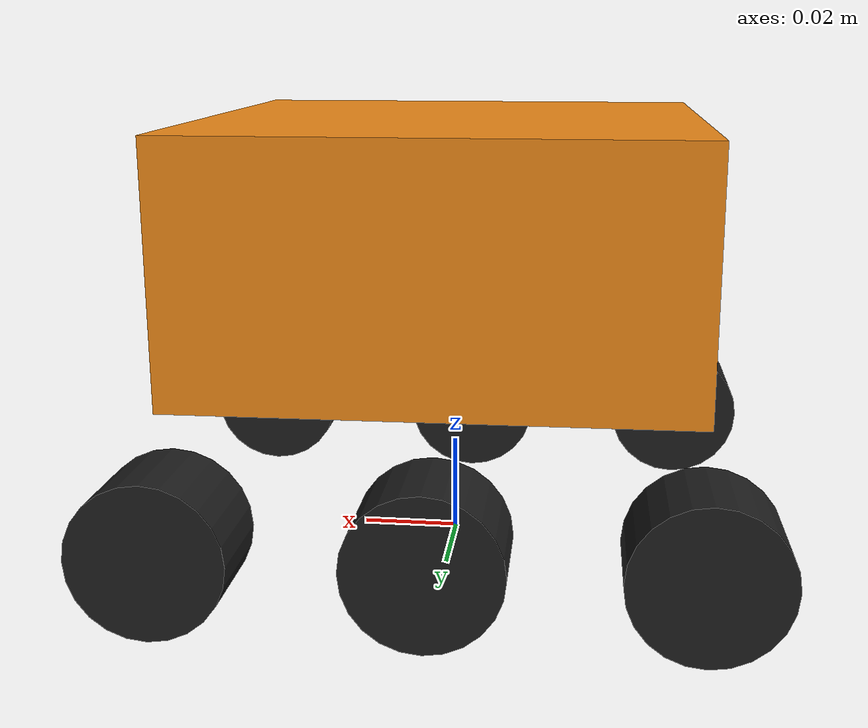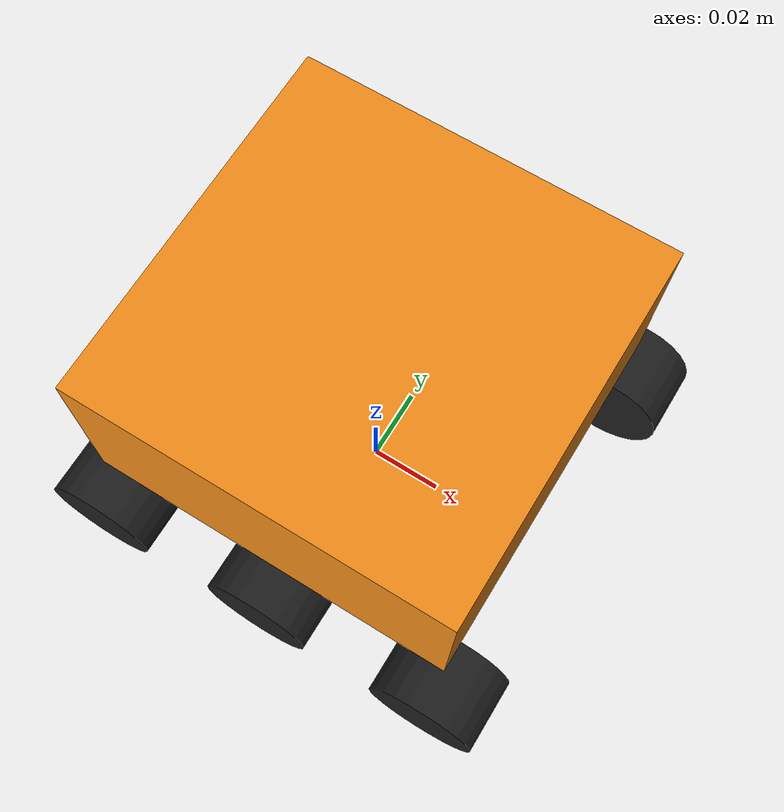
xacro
<?xml version="1.0"?>
<!-- Basic differential drive mobile base -->
<robot xmlns:xacro="http://www.ros.org/wiki/xacro" name="diffdrive_robot">
  <xacro:arg name="prefix" default="" />
  <xacro:arg name="use_mock_hardware" default="true" />

  <xacro:include filename="$(find curie_robot_description)/mock_diffbot/urdf/mock_diffbot_description.urdf.xacro" />

  <!-- Import Rviz colors -->
  <xacro:include filename="$(find curie_robot_description)/mock_diffbot/urdf/mock_diffbot.materials.xacro" />

  <!-- Import diffbot ros2_control description -->
  <xacro:include filename="$(find curie_drive_controller)/config/mock_diffbot.ros2_control.xacro" />

  <xacro:diffbot prefix="$(arg prefix)" />

  <xacro:mock_diffbot_ros2_control
    name="MockDiffBot" prefix="$(arg prefix)" use_vcan="$(arg use_mock_hardware)" />

</robot>

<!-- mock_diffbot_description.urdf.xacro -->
<robot xmlns:xacro="http://www.ros.org/wiki/xacro">

  <xacro:macro name="diffbot" params="prefix">

  <!-- Constants for robot dimensions -->
  <xacro:property name="PI" value="3.1415926535897931"/>
  <xacro:property name="base_mass" value="0.3" /> <!-- arbitrary value for base mass -->
  <xacro:property name="base_width" value="0.1" />
  <xacro:property name="base_length" value="0.1" />
  <xacro:property name="base_height" value="0.05" />
  <xacro:property name="wheel_mass" value="0.3" /> <!-- arbitrary value for wheel mass -->
  <xacro:property name="wheel_len" value="0.020" />
  <xacro:property name="wheel_radius" value="0.015" />
  <xacro:property name="caster_wheel_mass" value="0.1" /> <!-- arbitrary value for caster wheel mass -->
  <xacro:property name="caster_wheel_radius" value="0.015" />
  <xacro:property name="z_offset" value="${base_height/2}" /> <!-- Space btw top of beam and the each joint -->

  <!-- Base Link -->
  <link name="${prefix}base_link">
    <collision>
      <origin xyz="0 0 0" rpy="0 0 0"/>
      <geometry>
        <box size="${base_width} ${base_length} ${base_height}"/>
      </geometry>
    </collision>

    <visual>
      <origin xyz="0 0 ${base_height/2 + wheel_radius + z_offset}" rpy="0 0 0"/>
      <geometry>
        <box size="${base_width} ${base_length} ${base_height}"/>
      </geometry>
      <material name="orange"/>
    </visual>

    <inertial>
      <origin xyz="0 0 0" rpy="0 0 0"/>
      <mass value="${base_mass}"/>
      <inertia
        ixx="${base_mass / 12.0 * (base_length*base_length + base_height*base_height)}" ixy="0.0" ixz="0.0"
        iyy="${base_mass / 12.0 * (base_height*base_height + base_width*base_width)}" iyz="0.0"
        izz="${base_mass / 12.0 * (base_width*base_width + base_length*base_length)}"/>
      </inertial>
    </link>

    <joint name="${prefix}front_left_wheel_joint" type="continuous">
      <parent link="${prefix}base_link"/>
      <child link="${prefix}front_left_wheel"/>
      <origin xyz="${base_length/2} -${base_width/2} ${wheel_radius}" rpy="0 0 0"/>
      <axis xyz="0 1 0"/>
      <dynamics damping="0.2"/>
      <limit effort="100" velocity="1.0"/>
    </joint>

    <!-- front left wheel Link -->
    <link name="${prefix}front_left_wheel">
      <collision>
        <origin xyz="0 0 0" rpy="${PI/2} 0 0"/>
        <geometry>
          <cylinder length="${wheel_len}" radius="${wheel_radius}"/>
        </geometry>
      </collision>

      <visual>
        <origin xyz="0 0 0" rpy="${PI/2} 0 0"/>
        <geometry>
          <cylinder length="${wheel_len}" radius="${wheel_radius}"/>
        </geometry>
        <material name="black"/>
      </visual>

      <inertial>
        <origin xyz="0 0 0" rpy="${PI/2} 0 0"/>
        <mass value="${wheel_mass}"/>
        <inertia
          ixx="${wheel_mass / 12.0 * (3*wheel_radius*wheel_radius + wheel_len*wheel_len)}" ixy="0.0" ixz="0.0"
          iyy="${wheel_mass / 12.0 * (3*wheel_radius*wheel_radius + wheel_len*wheel_len)}" iyz="0.0"
          izz="${wheel_mass / 2.0 * wheel_radius*wheel_radius}"/>
        </inertial>
      </link>

    <joint name="${prefix}front_right_wheel_joint" type="continuous">
      <parent link="${prefix}base_link"/>
      <child link="${prefix}front_right_wheel"/>
      <origin xyz="${base_length/2} ${base_width/2} ${wheel_radius}" rpy="0 0 0"/>
      <axis xyz="0 1 0"/>
      <dynamics damping="0.2"/>
      <limit effort="100" velocity="1.0"/>
    </joint>

    <!-- front right wheel Link -->
    <link name="${prefix}front_right_wheel">
      <collision>
        <origin xyz="0 0 0" rpy="${PI/2} 0 0"/>
        <geometry>
          <cylinder length="${wheel_len}" radius="${wheel_radius}"/>
        </geometry>
      </collision>

      <visual>
        <origin xyz="0 0 0" rpy="${PI/2} 0 0"/>
        <geometry>
          <cylinder length="${wheel_len}" radius="${wheel_radius}"/>
        </geometry>
        <material name="black"/>
      </visual>

      <inertial>
        <origin xyz="0 0 0" rpy="${PI/2} 0 0"/>
        <mass value="${wheel_mass}"/>
        <inertia
          ixx="${wheel_mass / 12.0 * (3*wheel_radius*wheel_radius + wheel_len*wheel_len)}" ixy="0.0" ixz="0.0"
          iyy="${wheel_mass / 12.0 * (3*wheel_radius*wheel_radius + wheel_len*wheel_len)}" iyz="0.0"
          izz="${wheel_mass / 2.0 * wheel_radius*wheel_radius}"/>
        </inertial>
      </link>

    <joint name="${prefix}mid_left_wheel_joint" type="continuous">
      <parent link="${prefix}base_link"/>
      <child link="${prefix}mid_left_wheel"/>
      <origin xyz="0 -${base_width/2} ${wheel_radius}" rpy="0 0 0"/>
      <axis xyz="0 1 0"/>
      <dynamics damping="0.2"/>
      <limit effort="100" velocity="1.0"/>
    </joint>

    <!-- mid left wheel Link -->
    <link name="${prefix}mid_left_wheel">
      <collision>
        <origin xyz="0 0 0" rpy="${PI/2} 0 0"/>
        <geometry>
          <cylinder length="${wheel_len}" radius="${wheel_radius}"/>
        </geometry>
      </collision>

      <visual>
        <origin xyz="0 0 0" rpy="${PI/2} 0 0"/>
        <geometry>
          <cylinder length="${wheel_len}" radius="${wheel_radius}"/>
        </geometry>
        <material name="black"/>
      </visual>

      <inertial>
        <origin xyz="0 0 0" rpy="${PI/2} 0 0"/>
        <mass value="${wheel_mass}"/>
        <inertia
          ixx="${wheel_mass / 12.0 * (3*wheel_radius*wheel_radius + wheel_len*wheel_len)}" ixy="0.0" ixz="0.0"
          iyy="${wheel_mass / 12.0 * (3*wheel_radius*wheel_radius + wheel_len*wheel_len)}" iyz="0.0"
          izz="${wheel_mass / 2.0 * wheel_radius*wheel_radius}"/>
        </inertial>
      </link>

    <joint name="${prefix}mid_right_wheel_joint" type="continuous">
      <parent link="${prefix}base_link"/>
      <child link="${prefix}mid_right_wheel"/>
      <origin xyz="0 ${base_width/2} ${wheel_radius}" rpy="0 0 0"/>
      <axis xyz="0 1 0"/>
      <dynamics damping="0.2"/>
      <limit effort="100" velocity="1.0"/>
    </joint>

        <!-- mid right wheel Link -->
    <link name="${prefix}mid_right_wheel">
      <collision>
        <origin xyz="0 0 0" rpy="${PI/2} 0 0"/>
        <geometry>
          <cylinder length="${wheel_len}" radius="${wheel_radius}"/>
        </geometry>
      </collision>

      <visual>
        <origin xyz="0 0 0" rpy="${PI/2} 0 0"/>
        <geometry>
          <cylinder length="${wheel_len}" radius="${wheel_radius}"/>
        </geometry>
        <material name="black"/>
      </visual>

      <inertial>
        <origin xyz="0 0 0" rpy="${PI/2} 0 0"/>
        <mass value="${wheel_mass}"/>
        <inertia
          ixx="${wheel_mass / 12.0 * (3*wheel_radius*wheel_radius + wheel_len*wheel_len)}" ixy="0.0" ixz="0.0"
          iyy="${wheel_mass / 12.0 * (3*wheel_radius*wheel_radius + wheel_len*wheel_len)}" iyz="0.0"
          izz="${wheel_mass / 2.0 * wheel_radius*wheel_radius}"/>
        </inertial>
      </link>

    <joint name="${prefix}back_left_wheel_joint" type="continuous">
      <parent link="${prefix}base_link"/>
      <child link="${prefix}back_left_wheel"/>
      <origin xyz="${-base_length/2} -${base_width/2} ${wheel_radius}" rpy="0 0 0"/>
      <axis xyz="0 1 0"/>
      <dynamics damping="0.2"/>
      <limit effort="100" velocity="1.0"/>
    </joint>

    <!-- back left wheel Link -->
    <link name="${prefix}back_left_wheel">
      <collision>
        <origin xyz="0 0 0" rpy="${PI/2} 0 0"/>
        <geometry>
          <cylinder length="${wheel_len}" radius="${wheel_radius}"/>
        </geometry>
      </collision>

      <visual>
        <origin xyz="0 0 0" rpy="${PI/2} 0 0"/>
        <geometry>
          <cylinder length="${wheel_len}" radius="${wheel_radius}"/>
        </geometry>
        <material name="black"/>
      </visual>

      <inertial>
        <origin xyz="0 0 0" rpy="${PI/2} 0 0"/>
        <mass value="${wheel_mass}"/>
        <inertia
          ixx="${wheel_mass / 12.0 * (3*wheel_radius*wheel_radius + wheel_len*wheel_len)}" ixy="0.0" ixz="0.0"
          iyy="${wheel_mass / 12.0 * (3*wheel_radius*wheel_radius + wheel_len*wheel_len)}" iyz="0.0"
          izz="${wheel_mass / 2.0 * wheel_radius*wheel_radius}"/>
        </inertial>
      </link>

    <joint name="${prefix}back_right_wheel_joint" type="continuous">
      <parent link="${prefix}base_link"/>
      <child link="${prefix}back_right_wheel"/>
      <origin xyz="${-base_length/2} ${base_width/2} ${wheel_radius}" rpy="0 0 0"/>
      <axis xyz="0 1 0"/>
      <dynamics damping="0.2"/>
      <limit effort="100" velocity="1.0"/>
    </joint>

    <!-- back right wheel Link -->
    <link name="${prefix}back_right_wheel">
      <collision>
        <origin xyz="0 0 0" rpy="${PI/2} 0 0"/>
        <geometry>
          <cylinder length="${wheel_len}" radius="${wheel_radius}"/>
        </geometry>
      </collision>

      <visual>
        <origin xyz="0 0 0" rpy="${PI/2} 0 0"/>
        <geometry>
          <cylinder length="${wheel_len}" radius="${wheel_radius}"/>
        </geometry>
        <material name="black"/>
      </visual>

      <inertial>
        <origin xyz="0 0 0" rpy="${PI/2} 0 0"/>
        <mass value="${wheel_mass}"/>
        <inertia
          ixx="${wheel_mass / 12.0 * (3*wheel_radius*wheel_radius + wheel_len*wheel_len)}" ixy="0.0" ixz="0.0"
          iyy="${wheel_mass / 12.0 * (3*wheel_radius*wheel_radius + wheel_len*wheel_len)}" iyz="0.0"
          izz="${wheel_mass / 2.0 * wheel_radius*wheel_radius}"/>
        </inertial>
      </link>
  </xacro:macro>

</robot>
